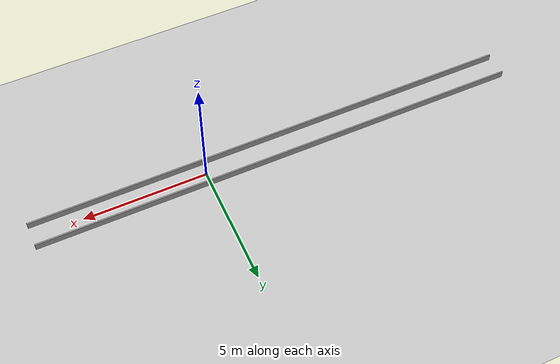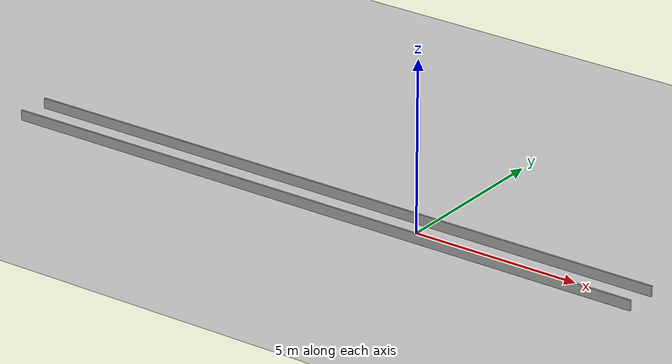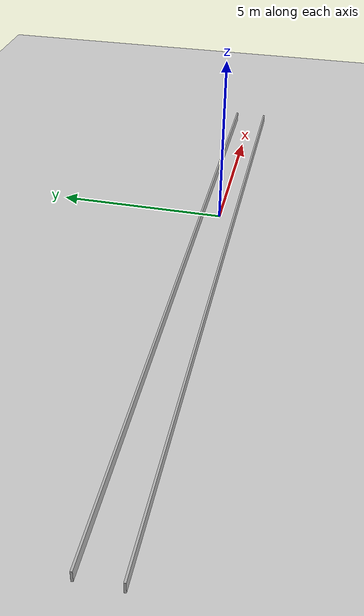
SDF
<?xml version="1.0"?>
<sdf version="1.4">
  <world name="default">

    <physics type="ode">
      <max_step_size>0.01</max_step_size>
      <real_time_update_rate>0</real_time_update_rate>
    </physics>

    <include>
      <uri>model://ground_plane</uri>
    </include>
    <include>
      <uri>model://sun</uri>
    </include>

    <model name="pipe">
      <pose>0 0 0  0 0 0</pose>
      <static>true</static>

      <link name="leftwall_1">
        <pose> -3 0.5 0.15 0 0 0 </pose>
        <visual name="visual">
          <geometry>
            <box>
                <size>20 0.05 0.3</size>
            </box>
          </geometry>
        </visual>
        <collision name="collision">
          <geometry>
            <box>
                <size>20 0.05 1</size>
            </box>
          </geometry>
        </collision>
      </link>

      <link name="rightwall_1">
        <pose> -3 -0.5 0.15 0 0 0 </pose>
        <visual name="visual">
          <geometry>
            <box>
                <size>20 0.05 0.3</size>
            </box>
          </geometry>
        </visual>
        <collision name="collision">
          <geometry>
            <box>
                <size>20 0.05 1</size>
            </box>
          </geometry>
        </collision>
      </link>
    </model>

  </world>
</sdf>
